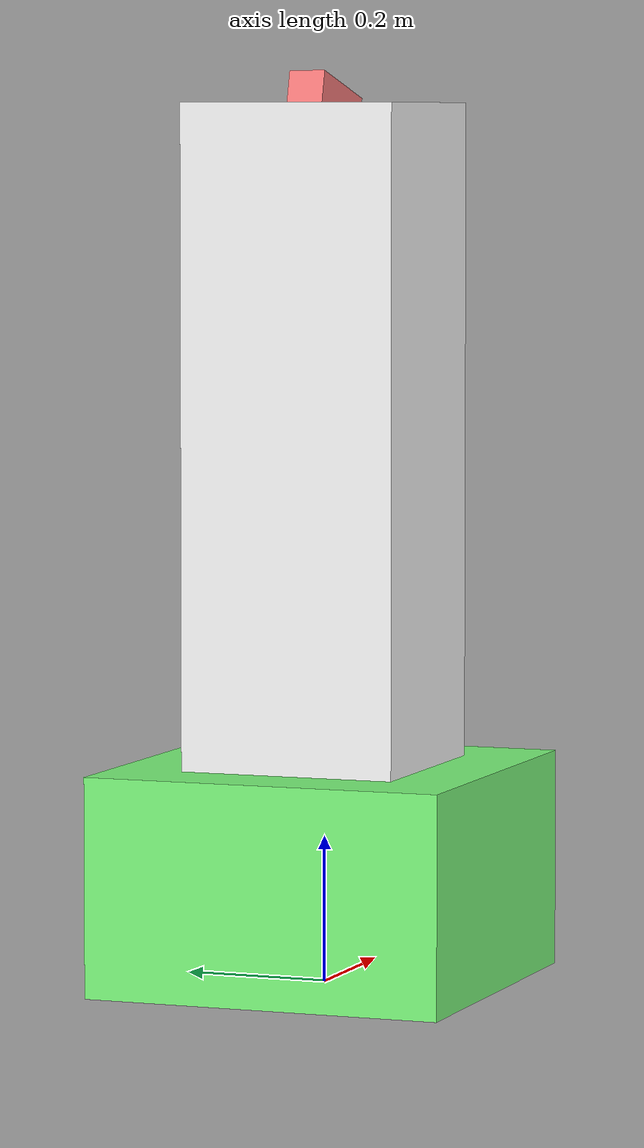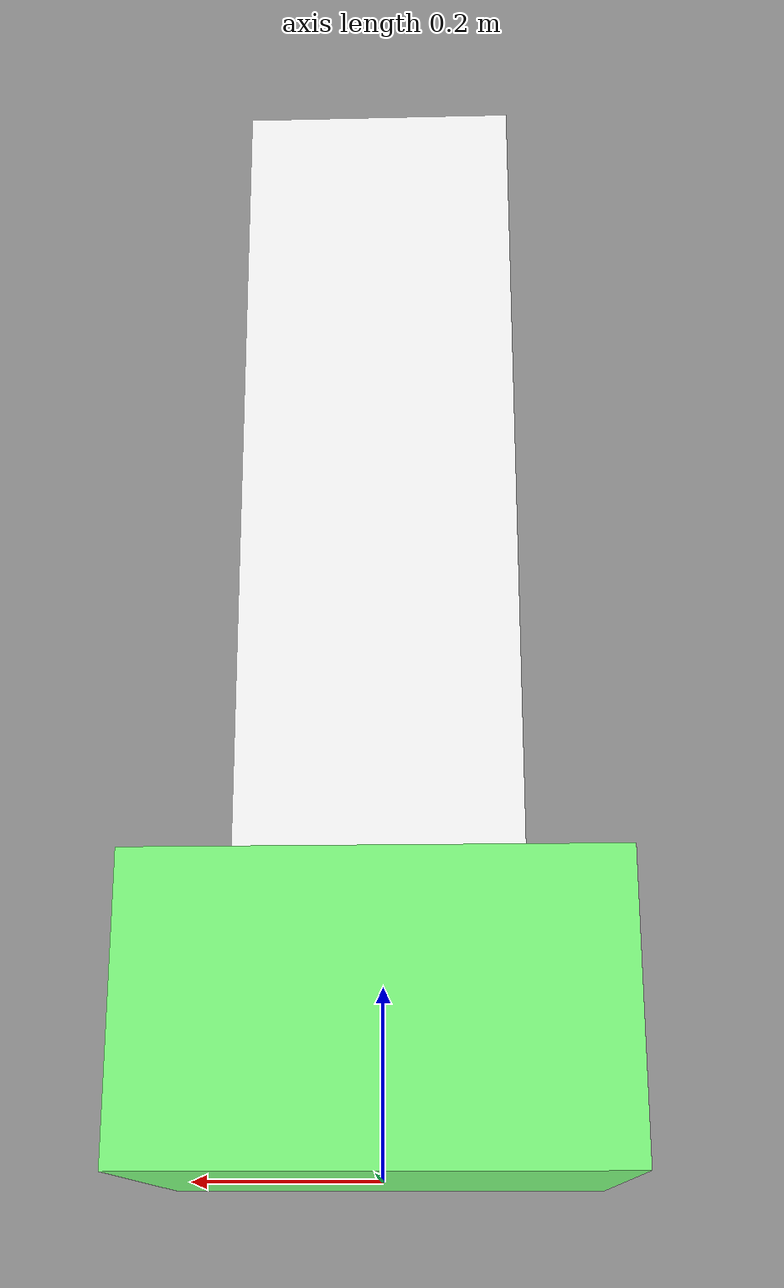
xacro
<?xml version="1.0"?>
<robot name="indy" xmlns:xacro="http://ros.org/wiki/xacro">
  <xacro:arg name="robot_name" default="indy" />
  <xacro:property name="rover_size" value="0.5 0.5 0.3" /> <!-- 適当です -->
  <xacro:property name="body_size" value="0.3 0.3 0.9" /> <!-- 適当です -->
  <xacro:property name="camera_size" value="0.15 0.05 0.05" /> <!-- 適当です -->

  <link name="$(arg robot_name)_base_footprint" />
  <joint name="$(arg robot_name)_base_joint" type="fixed">
    <origin xyz="0 0 0.15" rpy="0 0 0" />
    <parent link="$(arg robot_name)_base_footprint" />
    <child link="$(arg robot_name)_base_link" />
  </joint>

  <link name="$(arg robot_name)_base_link">
    <visual>
      <geometry>
        <box size="${rover_size}" />
      </geometry>
      <material name="green">
        <color rgba="0.5 1.0 0.5 1.0" />
      </material>
    </visual>

    <collision>
      <geometry>
        <box size="${rover_size}" />
      </geometry>
    </collision>
  </link>

  <joint name="$(arg robot_name)_body_joint" type="fixed">
    <origin xyz="0 0 0.6" rpy="0 0 0" />
    <parent link="$(arg robot_name)_base_link" />
    <child link="$(arg robot_name)_body_link" />
  </joint>

  <link name="$(arg robot_name)_body_link">
    <visual>
      <geometry>
        <box size="${body_size}" />
      </geometry>
      <material name="white">
        <color rgba="1.0 1.0 1.0 1.0" />
      </material>
    </visual>

    <collision>
      <geometry>
        <box size="${body_size}" />
      </geometry>
    </collision>
  </link>

  <joint name="$(arg robot_name)_camera_joint" type="fixed">
    <origin xyz="0 0 0.45" rpy="0 0.25 0" />  <!-- this rotation should be set in neck joint -->
    <parent link="$(arg robot_name)_body_link" />
    <child link="$(arg robot_name)_camera_link" />
  </joint>

  <link name="$(arg robot_name)_camera_link">
    <visual>
      <geometry>
        <box size="${camera_size}" />
      </geometry>
      <material name="red">
        <color rgba="1.0 0.5 0.5 1.0" />
      </material>
    </visual>

    <collision>
      <geometry>
        <box size="${camera_size}" />
      </geometry>
    </collision>
  </link>
</robot>
